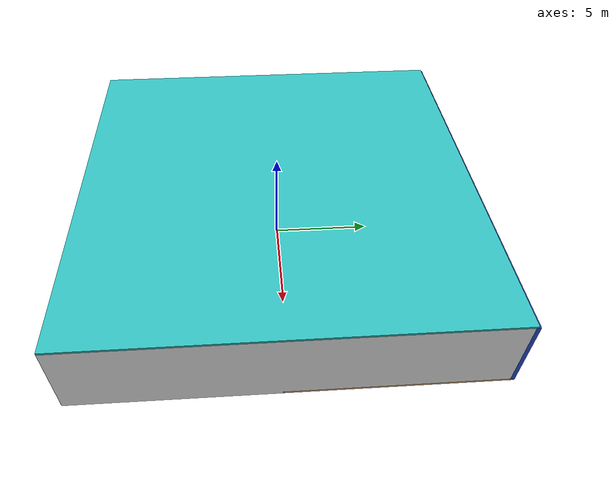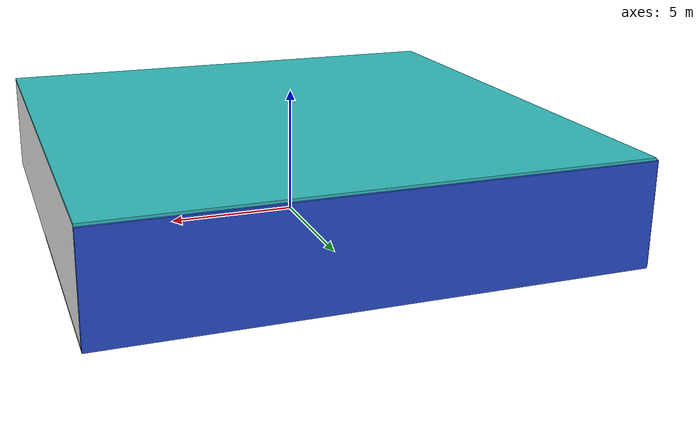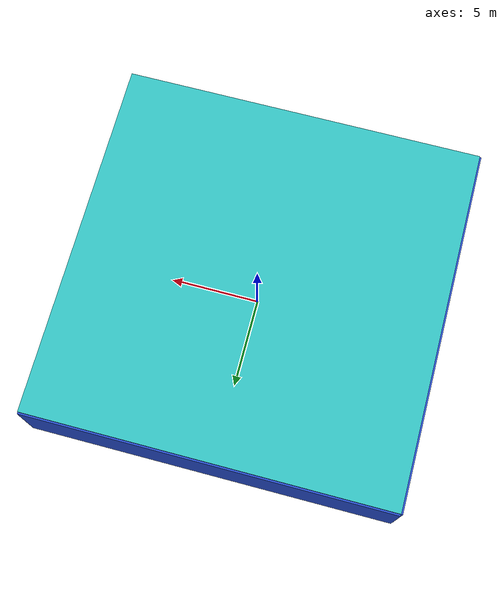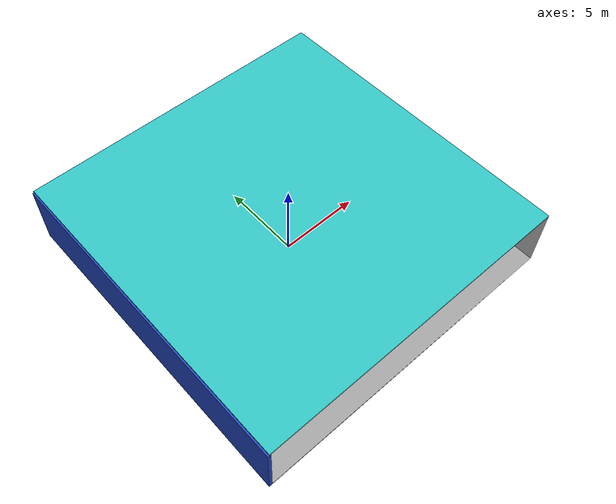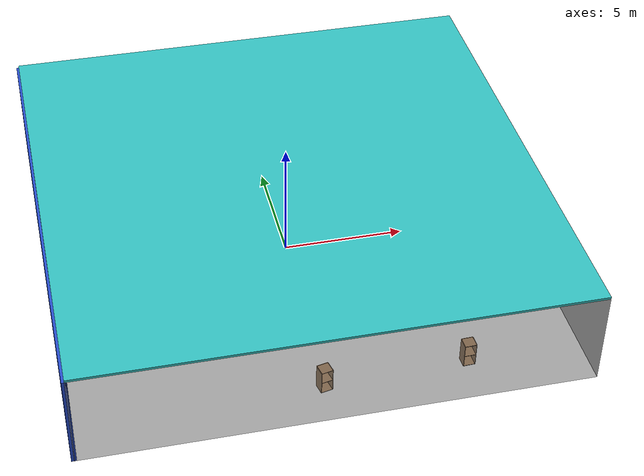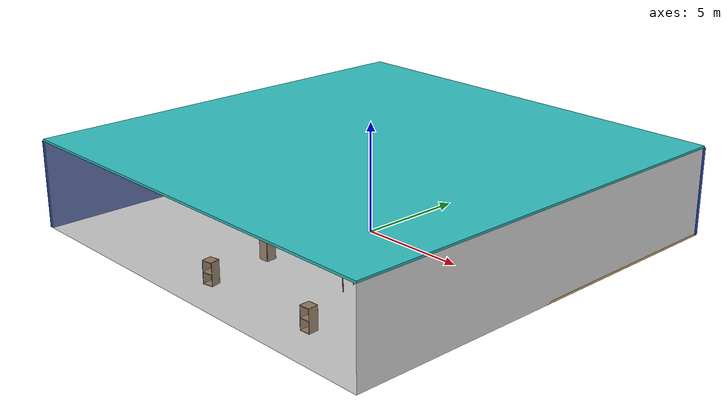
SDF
<sdf version="1.4">
 <world name="default">
  <physics type="ode">
   <max_step_size>0.001</max_step_size>
   <real_time_factor>1</real_time_factor>
   <real_time_update_rate>1000</real_time_update_rate>
   <gravity>0 0 -9.8</gravity>
  </physics>
  <scene><ambient>0.4 0.4 0.4 1</ambient><background>0.7 0.7 0.7 1</background><shadows>1</shadows></scene>
  <model name="Surrounding">
   <static>1</static>
   <link name="Ceiling">
    <collision name="Ceiling_Collision"><geometry><box><size>20 20 0.1</size></box></geometry></collision>
    <visual name="Ceiling_Visual">
     <geometry><box><size>20 20 0.1</size></box></geometry>
     <material>
      <script><uri>file://media/materials/scripts/gazebo.material</uri><name>Gazebo/TurquoiseGlow</name></script>
     </material>
    </visual>
    <pose>0 0 4.05 0 0 0</pose>
   </link>
   <link name="Wall_South">
    <collision name="Wall_South_Collision">
     <geometry><box><size>20 0 4</size></box></geometry>
     <pose>0 0 2 0 -0 0</pose>
    </collision>
    <visual name="Wall_South_Visual">
     <pose>0 0 2 0 -0 0</pose>
     <geometry><box><size>20 0 4</size></box></geometry>
     <material>
      <script><uri>file://media/materials/scripts/gazebo.material</uri><name>Gazebo/GreyTransparent</name></script>
     </material>
    </visual>
    <velocity_decay><linear>0</linear><angular>0</angular></velocity_decay>
    <pose>0 -10 0 0 -0 0</pose>
   </link>
   <link name="Wall_East">
    <collision name="Wall_21_Collision">
     <geometry><box><size>20 0 4</size></box></geometry>
     <pose>0 0 2 0 -0 0</pose>
    </collision>
    <visual name="Wall_21_Visual">
     <pose>0 0 2 0 -0 0</pose>
     <geometry><box><size>20 0 4</size></box></geometry>
     <material>
      <script><uri>file://media/materials/scripts/gazebo.material</uri><name>Gazebo/White</name></script>
     </material>
    </visual>
    <velocity_decay><linear>0</linear><angular>0</angular></velocity_decay>
    <pose>10 0 0 0 -0 1.5708</pose>
   </link>
   <link name="Wall_North">
    <collision name="Wall_22_Collision">
     <geometry><box><size>20 0.2 4</size></box></geometry>
     <pose>0 0 2 0 -0 0</pose>
    </collision>
    <visual name="Wall_22_Visual">
     <pose>0 0 2 0 -0 0</pose>
     <geometry><box><size>20 0.2 4</size></box></geometry>
     <material>
      <script><uri>file://media/materials/scripts/gazebo.material</uri><name>Gazebo/BlueLaser</name></script>
     </material>
    </visual>
    <velocity_decay><linear>0</linear><angular>0</angular></velocity_decay>
    <pose>0 10 0 0 -0 0</pose>
   </link>
   <link name="Wall_West">
    <collision name="Wall_23_Collision">
     <geometry><box><size>20 0.2 4</size></box></geometry>
     <pose>0 0 2 0 -0 0</pose>
    </collision>
    <visual name="Wall_23_Visual">
     <pose>0 0 2 0 -0 0</pose>
     <geometry><box><size>20 0.2 4</size></box></geometry>
     <material>
      <script><uri>file://media/materials/scripts/gazebo.material</uri><name>Gazebo/BlueLaser</name></script>
     </material>
    </visual>
    <velocity_decay><linear>0</linear><angular>0</angular></velocity_decay>
    <pose>-10 0 0 0 0 -1.5708</pose>
   </link>
   <link name="Ground_link">
    <collision name="collision">
     <pose>0 0 .05 0 -0 0</pose>
     <geometry><box><size>20 20 0.1</size></box></geometry>
    </collision>
    <visual name="visual">
     <pose>0 0 .05 0 -0 0</pose>
     <geometry><box><size>20 20 0.1</size></box></geometry>
     <material>
      <script>
       <uri>file://media/materials/scripts/gazebo.material</uri>
       <name>Gazebo/OrangeTransparent</name>
      </script>
     </material>
    </visual>
   </link>
   <static>1</static>
  </model>
  <spherical_coordinates>
   <surface_model>EARTH_WGS84</surface_model>
   <latitude_deg>0</latitude_deg>
   <longitude_deg>0</longitude_deg>
   <elevation>0</elevation>
   <heading_deg>0</heading_deg>
  </spherical_coordinates>
  <light name="lightball_0" type="diffuse">
   <diffuse>0.8 0.8 0.8 1</diffuse>
   <specular>0.2 0.2 0.2 1</specular>
   <attenuation>
    <range>100</range>
    <constant>0.7</constant>
    <linear>0.01</linear>
    <quadratic>0.001</quadratic>
   </attenuation>
   <direction>-0.5 0.1 -0.9</direction>
   <pose>5.4164980079 -1.61704651647 2.81560430249 0 0 0</pose>
  </light>
  <light name="lightball_1" type="diffuse">
   <diffuse>0.8 0.8 0.8 1</diffuse>
   <specular>0.2 0.2 0.2 1</specular>
   <attenuation>
    <range>100</range>
    <constant>0.7</constant>
    <linear>0.01</linear>
    <quadratic>0.001</quadratic>
   </attenuation>
   <direction>-0.5 0.1 -0.9</direction>
   <pose>-1.73163806363 9.87238850636 1.75768976967 0 0 0</pose>
  </light>
  <light name="lightball_2" type="diffuse">
   <diffuse>0.8 0.8 0.8 1</diffuse>
   <specular>0.2 0.2 0.2 1</specular>
   <attenuation>
    <range>100</range>
    <constant>0.7</constant>
    <linear>0.01</linear>
    <quadratic>0.001</quadratic>
   </attenuation>
   <direction>-0.5 0.1 -0.9</direction>
   <pose>-9.04412995887 -3.7270331051 1.43534172038 0 0 0</pose>
  </light>
  <light name="lightball_3" type="diffuse">
   <diffuse>0.8 0.8 0.8 1</diffuse>
   <specular>0.2 0.2 0.2 1</specular>
   <attenuation>
    <range>100</range>
    <constant>0.7</constant>
    <linear>0.01</linear>
    <quadratic>0.001</quadratic>
   </attenuation>
   <direction>-0.5 0.1 -0.9</direction>
   <pose>-7.24253083514 -0.509584123881 0.930861293098 0 0 0</pose>
  </light>
  <light name="lightball_4" type="diffuse">
   <diffuse>0.8 0.8 0.8 1</diffuse>
   <specular>0.2 0.2 0.2 1</specular>
   <attenuation>
    <range>100</range>
    <constant>0.7</constant>
    <linear>0.01</linear>
    <quadratic>0.001</quadratic>
   </attenuation>
   <direction>-0.5 0.1 -0.9</direction>
   <pose>5.23709577481 -1.58751724974 1.65920709781 0 0 0</pose>
  </light>
  <include><uri>model://cabinet</uri><pose>-0.320535971583 -8.33371474177 0 0 0 1.78903352102</pose></include>
  <include><uri>model://cabinet</uri><pose>-0.737139826198 -5.17135263763 0 0 0 0.0383229936747</pose></include>
  <include>
   <uri>model://robocup_3Dsim_goal</uri>
   <pose>-1.06687637706 -2.11758060319 0 0 0 1.9057805793</pose>
  </include>
  <include>
   <uri>model://textured_shapes</uri>
   <pose>0.633605180177 0.571883115045 0 0 0 1.84405396813</pose>
  </include>
  <include>
   <uri>model://construction_cone</uri>
   <pose>1.98982768776 7.98258566453 0 0 0 2.66507791605</pose>
  </include>
  <include><uri>model://cabinet</uri><pose>5.40549490924 -8.13568495549 0 0 0 1.61626487482</pose></include>
  <include><uri>model://table</uri><pose>4.37927367896 -4.5247482323 0 0 0 0.262075595956</pose></include>
 </world>
</sdf>

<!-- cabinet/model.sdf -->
<sdf version="1.5">
  <model name="cabinet">
    <static>true</static>
    <link name="cabinet_bottom_plate">
      <inertial>
        <pose>0 0 -1 0 0 0</pose>
        <inertia>
          <ixx>2.050000</ixx>
          <ixy>0</ixy>
          <ixz>0</ixz>
          <iyy>2.050000</iyy>
          <iyz>0</iyz>
          <izz>2.050000</izz>
        </inertia>
        <mass>25.000000</mass>
      </inertial>
      <collision name="cabinet_bottom_plate_geom">
        <pose>0 0 0.010000 0 0 0</pose>
        <geometry>
          <box>
            <size>0.450000 0.450000 0.020000</size>
          </box>
        </geometry>
      </collision>
      <visual name="cabinet_bottom_plate_geom_visual">
        <pose>0 0 0.010000 0 0 0</pose>
        <geometry>
          <box>
            <size>0.450000 0.450000 0.020000</size>
          </box>
        </geometry>
        <material>
          <script>
            <uri>model://media/materials/scripts/gazebo.material</uri>
            <name>Gazebo/Wood</name>
          </script>
        </material>
      </visual>
      <collision name="cabinet_bottom_plate_geom_cabinet_back_plate">
        <pose>0.235000 0 0.510000 0 0 0</pose>
        <geometry>
          <box>
            <size>0.020000 0.450000 1.020000</size>
          </box>
        </geometry>
      </collision>
      <visual name="cabinet_bottom_plate_geom_cabinet_back_plate_visual">
        <pose>0.235000 0 0.510000 0 0 0</pose>
        <geometry>
          <box>
            <size>0.020000 0.450000 1.020000</size>
          </box>
        </geometry>
        <material>
          <script>
            <uri>model://media/materials/scripts/gazebo.material</uri>
            <name>Gazebo/Wood</name>
          </script>
        </material>
      </visual>
      <collision name="cabinet_bottom_plate_geom_cabinet_left_plate">
        <pose>0 0.235000 0.510000 0 0 0</pose>
        <geometry>
          <box>
            <size>0.450000 0.020000 1.020000</size>
          </box>
        </geometry>
      </collision>
      <visual name="cabinet_bottom_plate_geom_cabinet_left_plate_visual">
        <pose>0 0.235000 0.510000 0 0 0</pose>
        <geometry>
          <box>
            <size>0.450000 0.020000 1.020000</size>
          </box>
        </geometry>
        <material>
          <script>
            <uri>model://media/materials/scripts/gazebo.material</uri>
            <name>Gazebo/Wood</name>
          </script>
        </material>
      </visual>
      <collision name="cabinet_bottom_plate_geom_cabinet_middle_plate">
        <pose>0 0 0.510000 0 0 0</pose>
        <geometry>
          <box>
            <size>0.450000 0.450000 0.020000</size>
          </box>
        </geometry>
      </collision>
      <visual name="cabinet_bottom_plate_geom_cabinet_middle_plate_visual">
        <pose>0 0 0.510000 0 0 0</pose>
        <geometry>
          <box>
            <size>0.450000 0.450000 0.020000</size>
          </box>
        </geometry>
        <material>
          <script>
            <uri>model://media/materials/scripts/gazebo.material</uri>
            <name>Gazebo/Wood</name>
          </script>
        </material>
      </visual>
      <collision name="cabinet_bottom_plate_geom_cabinet_right_plate">
        <pose>0 -0.235000 0.510000 0 0 0</pose>
        <geometry>
          <box>
            <size>0.450000 0.020000 1.020000</size>
          </box>
        </geometry>
      </collision>
      <visual name="cabinet_bottom_plate_geom_cabinet_right_plate_visual">
        <pose>0 -0.235000 0.510000 0 0 0</pose>
        <geometry>
          <box>
            <size>0.450000 0.020000 1.020000</size>
          </box>
        </geometry>
        <material>
          <script>
            <uri>model://media/materials/scripts/gazebo.material</uri>
            <name>Gazebo/Wood</name>
          </script>
        </material>
      </visual>
      <collision name="cabinet_bottom_plate_geom_cabinet_top_plate">
        <pose>0 0 1.010000 0 0 0</pose>
        <geometry>
          <box>
            <size>0.450000 0.450000 0.020000</size>
          </box>
        </geometry>
      </collision>
      <visual name="cabinet_bottom_plate_geom_cabinet_top_plate_visual">
        <pose>0 0 1.010000 0 0 0</pose>
        <geometry>
          <box>
            <size>0.450000 0.450000 0.020000</size>
          </box>
        </geometry>
        <material>
          <script>
            <uri>model://media/materials/scripts/gazebo.material</uri>
            <name>Gazebo/Wood</name>
          </script>
        </material>
      </visual>
    </link>
  </model>
</sdf>

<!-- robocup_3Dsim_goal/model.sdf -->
<sdf version="1.5">
  <model name="robocup_3d_goal">
    <static>true</static>
    <link name="left_post">
      <pose>0 1.05 0.45 0 0 0</pose>
      <collision name="collision">
        <geometry>
          <cylinder>
            <radius>0.05</radius>
            <length>0.9</length>
          </cylinder>
        </geometry>
      </collision>
      <visual name="visual">
        <geometry>
          <cylinder>
            <radius>0.05</radius>
            <length>0.9</length>
          </cylinder>
        </geometry>
        <material>
          <script>
            <uri>file://media/materials/scripts/gazebo.material</uri>
            <name>Gazebo/ZincYellow</name>
          </script>
        </material>
      </visual>
    </link>
    <link name="left_support_horiz_lower">
      <pose>0.30 1.05 0.01 0 0 0</pose>
      <collision name="collision">
        <geometry>
          <box>
            <size>0.50 0.02 0.02</size>
          </box>
        </geometry>
      </collision>
      <visual name="visual">
        <geometry>
          <box>
            <size>0.50 0.02 0.02</size>
          </box>
        </geometry>
        <material>
          <script>
            <uri>file://media/materials/scripts/gazebo.material</uri>
            <name>Gazebo/White</name>
          </script>
        </material>
      </visual>
    </link>
    <link name="left_support_horiz_upper">
      <pose>0.30 1.05 0.79 0 0 0</pose>
      <collision name="collision">
        <geometry>
          <box>
            <size>0.50 0.02 0.02</size>
          </box>
        </geometry>
      </collision>
      <visual name="visual">
        <geometry>
          <box>
            <size>0.50 0.02 0.02</size>
          </box>
        </geometry>
        <material>
          <script>
            <uri>file://media/materials/scripts/gazebo.material</uri>
            <name>Gazebo/White</name>
          </script>
        </material>
      </visual>
    </link>
    <link name="left_support_vertical">
      <pose>0.56 1.05 0.4 0 1.5708 0</pose>
      <collision name="collision">
        <geometry>
          <box>
            <size>0.80 0.02 0.02</size>
          </box>
        </geometry>
      </collision>
      <visual name="visual">
        <geometry>
          <box>
            <size>0.80 0.02 0.02</size>
          </box>
        </geometry>
        <material>
          <script>
            <uri>file://media/materials/scripts/gazebo.material</uri>
            <name>Gazebo/White</name>
          </script>
        </material>
      </visual>
    </link>
    <link name="right_support_horiz_lower">
      <pose>0.30 -1.05 0.01 0 0 0</pose>
      <collision name="collision">
        <geometry>
          <box>
            <size>0.50 0.02 0.02</size>
          </box>
        </geometry>
      </collision>
      <visual name="visual">
        <geometry>
          <box>
            <size>0.50 0.02 0.02</size>
          </box>
        </geometry>
        <material>
          <script>
            <uri>file://media/materials/scripts/gazebo.material</uri>
            <name>Gazebo/White</name>
          </script>
        </material>
      </visual>
    </link>
    <link name="right_support_horiz_upper">
      <pose>0.30 -1.05 0.79 0 0 0</pose>
      <collision name="collision">
        <geometry>
          <box>
            <size>0.50 0.02 0.02</size>
          </box>
        </geometry>
      </collision>
      <visual name="visual">
        <geometry>
          <box>
            <size>0.50 0.02 0.02</size>
          </box>
        </geometry>
        <material>
          <script>
            <uri>file://media/materials/scripts/gazebo.material</uri>
            <name>Gazebo/White</name>
          </script>
        </material>
      </visual>
    </link>
    <link name="right_support_vertical">
      <pose>0.56 -1.05 0.4 0 1.5708 0</pose>
      <collision name="collision">
        <geometry>
          <box>
            <size>0.80 0.02 0.02</size>
          </box>
        </geometry>
      </collision>
      <visual name="visual">
        <geometry>
          <box>
            <size>0.80 0.02 0.02</size>
          </box>
        </geometry>
        <material>
          <script>
            <uri>file://media/materials/scripts/gazebo.material</uri>
            <name>Gazebo/White</name>
          </script>
        </material>
      </visual>
    </link>
    <link name="center_support_horiz_lower">
      <pose>0.56 0 0.01 0 1.5708 0</pose>
      <collision name="collision">
        <geometry>
          <box>
            <size>0.02 2.08 0.02</size>
          </box>
        </geometry>
      </collision>
      <visual name="visual">
        <geometry>
          <box>
            <size>0.02 2.08 0.02</size>
          </box>
        </geometry>
        <material>
          <script>
            <uri>file://media/materials/scripts/gazebo.material</uri>
            <name>Gazebo/White</name>
          </script>
        </material>
      </visual>
    </link>
    <link name="center_support_horiz_upper">
      <pose>0.56 0 0.79 0 1.5708 0</pose>
      <collision name="collision">
        <geometry>
          <box>
            <size>0.02 2.08 0.02</size>
          </box>
        </geometry>
      </collision>
      <visual name="visual">
        <geometry>
          <box>
            <size>0.02 2.08 0.02</size>
          </box>
        </geometry>
        <material>
          <script>
            <uri>file://media/materials/scripts/gazebo.material</uri>
            <name>Gazebo/White</name>
          </script>
        </material>
      </visual>
    </link>
    <link name="right_post">
      <pose>0 -1.05 0.45 0 0 0</pose>
      <collision name="collision">
        <geometry>
          <cylinder>
            <radius>0.05</radius>
            <length>0.9</length>
          </cylinder>
        </geometry>
      </collision>
      <visual name="visual">
        <geometry>
          <cylinder>
            <radius>0.05</radius>
            <length>0.9</length>
          </cylinder>
        </geometry>
        <material>
          <script>
            <uri>file://media/materials/scripts/gazebo.material</uri>
            <name>Gazebo/ZincYellow</name>
          </script>
        </material>
      </visual>
    </link>
    <link name="crossbar">
      <pose>0 0 0.85 1.57 1.57 0</pose>
      <collision name="collision">
        <geometry>
          <cylinder>
            <radius>0.05</radius>
            <length>2.0</length>
          </cylinder>
        </geometry>
      </collision>
      <visual name="visual">
        <geometry>
          <cylinder>
            <radius>0.05</radius>
            <length>2.0</length>
          </cylinder>
        </geometry>
        <material>
          <script>
            <uri>file://media/materials/scripts/gazebo.material</uri>
            <name>Gazebo/ZincYellow</name>
          </script>
        </material>
      </visual>
    </link>
    <link name="center_net">
      <pose>0.56 0 0.40 0 0 0</pose>
      <collision name="collision">
        <geometry>
          <box>
            <size>0.01 2.1 0.80</size>
          </box>
        </geometry>
      </collision>
      <visual name="visual">
        <geometry>
          <box>
            <size>0.01 2.1 0.80</size>
          </box>
        </geometry>
        <material>
          <script>
            <uri>model://../model_source/models/robocup09_spl_field/materials/scripts/</uri>
            <uri>model://../model_source/models/robocup09_spl_field/materials/textures/</uri>
            <name>RoboCup/Net</name>
          </script>
        </material>
      </visual>
    </link>
    <link name="left_net">
      <pose>0.30 1.05 0.40 0 0 0</pose>
      <collision name="collision">
        <geometry>
          <box>
            <size>0.50 0.01 0.76</size>
          </box>
        </geometry>
      </collision>
      <visual name="visual">
        <geometry>
          <box>
            <size>0.50 0.01 0.76</size>
          </box>
        </geometry>
        <material>
          <script>
            <uri>model://../model_source/models/robocup09_spl_field/materials/scripts/</uri>
            <uri>model://../model_source/models/robocup09_spl_field/materials/textures/</uri>
            <name>RoboCup/Net</name>
          </script>
        </material>
      </visual>
    </link>
    <link name="right_net">
      <pose>0.30 -1.05 0.40 0 0 0</pose>
      <collision name="collision">
        <geometry>
          <box>
            <size>0.50 0.01 0.76</size>
          </box>
        </geometry>
      </collision>
      <visual name="visual">
        <geometry>
          <box>
            <size>0.50 0.01 0.76</size>
          </box>
        </geometry>
        <material>
          <script>
            <uri>model://../model_source/models/robocup09_spl_field/materials/scripts/</uri>
            <uri>model://../model_source/models/robocup09_spl_field/materials/textures/</uri>
            <name>RoboCup/Net</name>
          </script>
        </material>
      </visual>
    </link>
  </model>
</sdf>

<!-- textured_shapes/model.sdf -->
<sdf version="1.6">
  <model name="textured_shapes">
    <pose>0 0 0.5 0 0 0</pose>
    <link name="box">
      <pose>0 -1.5 0 0 0 0</pose>
      <collision name="collision">
        <geometry>
          <box>
            <size>1 1 1</size>
          </box>
        </geometry>
      </collision>
      <visual name="visual">
        <geometry>
          <box>
            <size>1 1 1</size>
          </box>
        </geometry>
        <material>
          <script>
            <uri>model://../model_source/models/textured_shapes/materials/scripts</uri>
            <uri>model://../model_source/models/textured_shapes/materials/textures</uri>
            <name>TexturedShape/Squares</name>
          </script>
        </material>
      </visual>
    </link>
    <link name="sphere">
      <collision name="collision">
        <geometry>
          <sphere>
            <radius>0.5</radius>
          </sphere>
        </geometry>
      </collision>
      <visual name="visual">
        <geometry>
          <sphere>
            <radius>0.5</radius>
          </sphere>
        </geometry>
        <material>
          <script>
            <uri>model://../model_source/models/textured_shapes/materials/scripts</uri>
            <uri>model://../model_source/models/textured_shapes/materials/textures</uri>
            <name>TexturedShape/Squares</name>
          </script>
        </material>
      </visual>
    </link>
    <link name="cylinder">
      <pose>0 1.5 0 0 0 0</pose>
      <collision name="collision">
        <geometry>
          <cylinder>
            <radius>0.5</radius>
            <length>1</length>
          </cylinder>
        </geometry>
      </collision>
      <visual name="visual">
        <geometry>
          <cylinder>
            <radius>0.5</radius>
            <length>1</length>
          </cylinder>
        </geometry>
        <material>
          <script>
            <uri>model://../model_source/models/textured_shapes/materials/scripts</uri>
            <uri>model://../model_source/models/textured_shapes/materials/textures</uri>
            <name>TexturedShape/Squares</name>
          </script>
        </material>
      </visual>
    </link>
  </model>
</sdf>

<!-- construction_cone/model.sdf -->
<sdf version="1.5">
  <model name="Construction Cone">
    <link name="link">
      <collision name="collision">
        <geometry>
          <mesh>
            <scale>10 10 10</scale>
            <uri>file://isr-testbed/construction_cone/meshes/construction_cone.dae</uri>
          </mesh>
        </geometry>
      </collision>
      <visual name="visual">
        <geometry>
          <mesh>
            <scale>10 10 10</scale>
            <uri>file://isr-testbed/construction_cone/meshes/construction_cone.dae</uri>
          </mesh>
        </geometry>
      </visual>
    </link>
  </model>
</sdf>

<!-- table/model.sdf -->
<sdf version="1.5">
  <model name="table">
    <static>true</static>
    <link name="link">
      <collision name="surface">
        <pose>0 0 1.0 0 0 0</pose>
        <geometry>
          <box>
            <size>1.5 0.8 0.03</size>
          </box>
        </geometry>
        <surface>
          <friction>
            <ode>
              <mu>0.6</mu>
              <mu2>0.6</mu2>
            </ode>
          </friction>
        </surface>
      </collision>
      <visual name="visual1">
        <pose>0 0 1.0 0 0 0</pose>
        <geometry>
          <box>
            <size>1.5 0.8 0.03</size>
          </box>
        </geometry>
        <material>
          <script>
            <uri>model://media/materials/scripts/gazebo.material</uri>
            <name>Gazebo/Wood</name>
          </script>
        </material>
      </visual>
      <collision name="front_left_leg">
        <pose>0.68 0.38 0.5 0 0 0</pose>
        <geometry>
          <cylinder>
            <radius>0.02</radius>
            <length>1.0</length>
          </cylinder>
        </geometry>
      </collision>
      <visual name="front_left_leg">
        <pose>0.68 0.38 0.5 0 0 0</pose>
        <geometry>
          <cylinder>
            <radius>0.02</radius>
            <length>1.0</length>
          </cylinder>
        </geometry>
        <material>
          <script>
            <uri>model://media/materials/scripts/gazebo.material</uri>
            <name>Gazebo/Grey</name>
          </script>
        </material>
      </visual>
      <collision name="front_right_leg">
        <pose>0.68 -0.38 0.5 0 0 0</pose>
        <geometry>
          <cylinder>
            <radius>0.02</radius>
            <length>1.0</length>
          </cylinder>
        </geometry>
      </collision>
      <visual name="front_right_leg">
        <pose>0.68 -0.38 0.5 0 0 0</pose>
        <geometry>
          <cylinder>
            <radius>0.02</radius>
            <length>1.0</length>
          </cylinder>
        </geometry>
        <material>
          <script>
            <uri>model://media/materials/scripts/gazebo.material</uri>
            <name>Gazebo/Grey</name>
          </script>
        </material>
      </visual>
      <collision name="back_right_leg">
        <pose>-0.68 -0.38 0.5 0 0 0</pose>
        <geometry>
          <cylinder>
            <radius>0.02</radius>
            <length>1.0</length>
          </cylinder>
        </geometry>
      </collision>
      <visual name="back_right_leg">
        <pose>-0.68 -0.38 0.5 0 0 0</pose>
        <geometry>
          <cylinder>
            <radius>0.02</radius>
            <length>1.0</length>
          </cylinder>
        </geometry>
        <material>
          <script>
            <uri>model://media/materials/scripts/gazebo.material</uri>
            <name>Gazebo/Grey</name>
          </script>
        </material>
      </visual>
      <collision name="back_left_leg">
        <pose>-0.68 0.38 0.5 0 0 0</pose>
        <geometry>
          <cylinder>
            <radius>0.02</radius>
            <length>1.0</length>
          </cylinder>
        </geometry>
      </collision>
      <visual name="back_left_leg">
        <pose>-0.68 0.38 0.5 0 0 0</pose>
        <geometry>
          <cylinder>
            <radius>0.02</radius>
            <length>1.0</length>
          </cylinder>
        </geometry>
        <material>
          <script>
            <uri>model://media/materials/scripts/gazebo.material</uri>
            <name>Gazebo/Grey</name>
          </script>
        </material>
      </visual>
    </link>
  </model>
</sdf>
